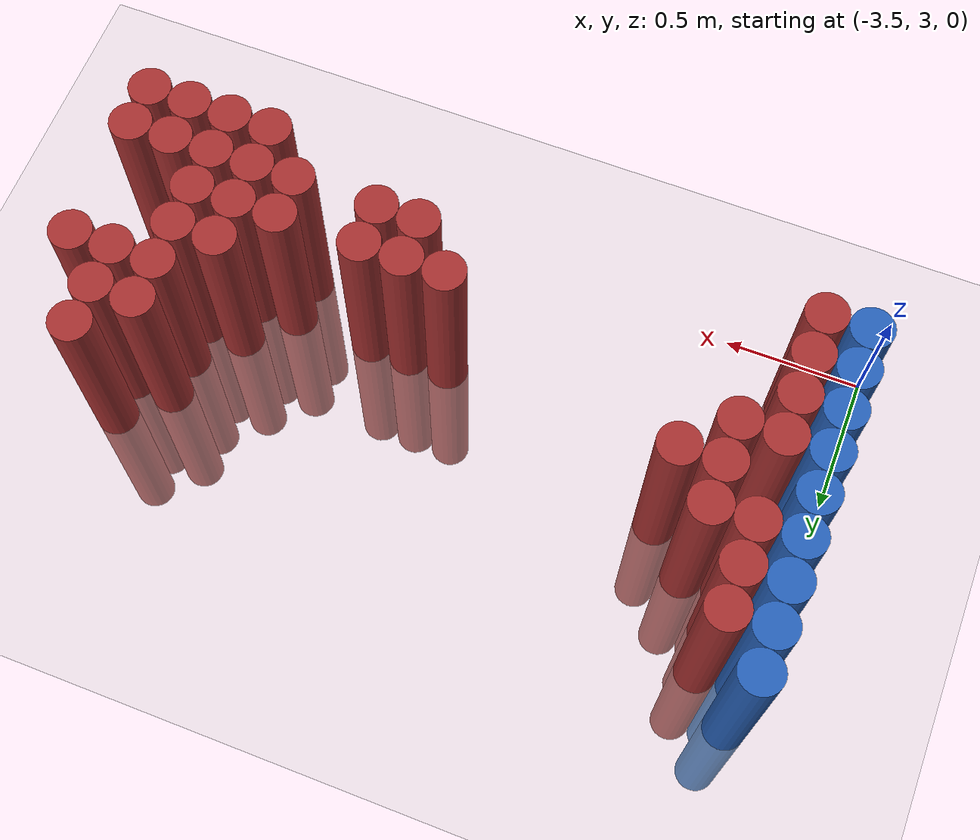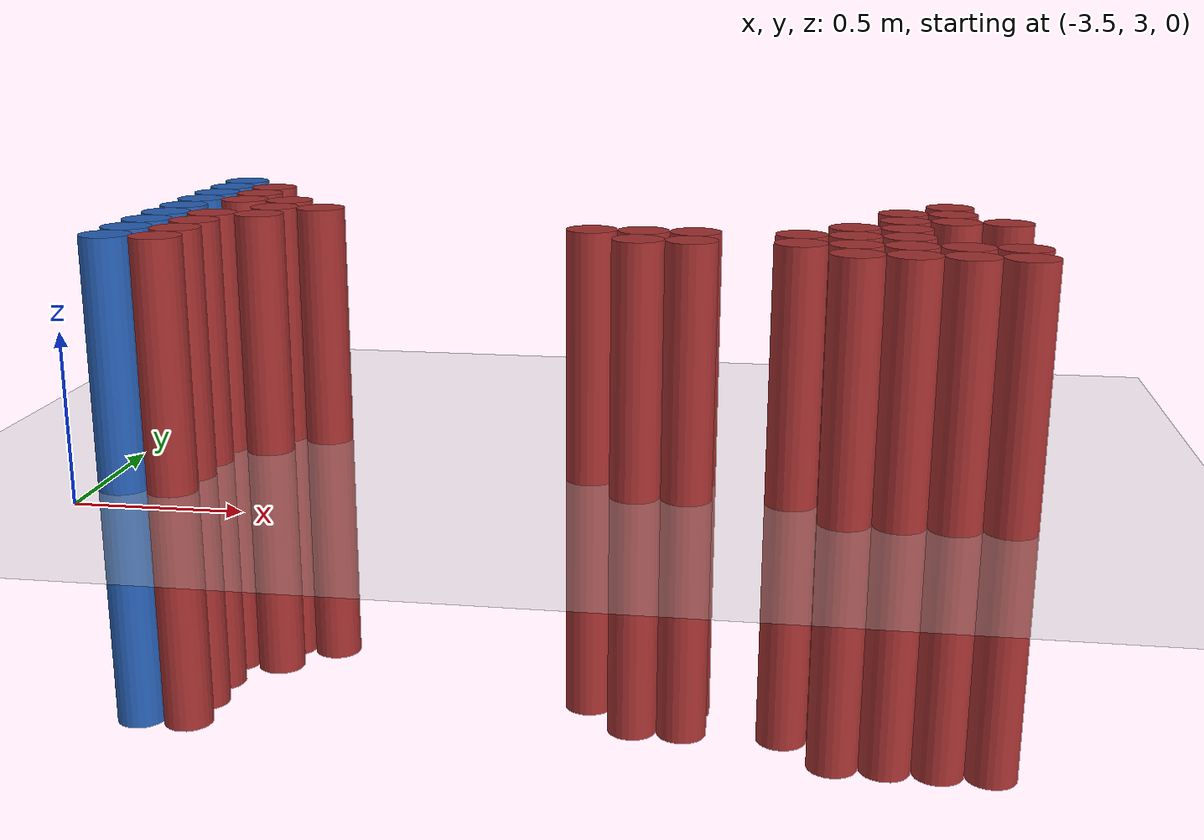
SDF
<sdf version="1.6">
 <world name="default">
  <model name="ground_plane">
   <static>1</static>
   <link name="link">
    <collision name="collision">
     <geometry><plane><normal>0 0 1</normal><size>100 100</size></plane></geometry>
     <surface><friction><ode><mu>100</mu><mu2>50</mu2></ode></friction></surface>
    </collision>
    <visual name="visual">
     <cast_shadows>0</cast_shadows>
     <geometry><plane><normal>0 0 1</normal><size>100 100</size></plane></geometry>
     <material>
      <script><uri>file://media/materials/scripts/gazebo.material</uri><name>Gazebo/Grey</name></script>
     </material>
    </visual>
   </link>
  </model>
  <model name="unit_cylinder_157">
   <static>1</static>
   <pose>-3.425000 3.175000 0.000000 0.000000 0.000000 0.000000</pose>
   <link name="link">
    <inertial>
     <mass>1</mass>
     <inertia><ixx>0.145833</ixx><ixy>0</ixy><ixz>0</ixz><iyy>0.145833</iyy><iyz>0</iyz><izz>0.125</izz></inertia>
    </inertial>
    <collision name="collision">
     <geometry><cylinder><radius>0.075000</radius><length>1.5</length></cylinder></geometry>
    </collision>
    <visual name="visual">
     <geometry><cylinder><radius>0.075000</radius><length>1.5</length></cylinder></geometry>
     <material>
      <ambient>0.152000 0.379000 0.720000 1</ambient>
      <diffuse>0.152000 0.379000 0.720000 1</diffuse>
     </material>
     <material>
      <script><name>Gazebo/Grey</name><uri>file://media/materials/scripts/gazebo.material</uri></script>
     </material>
    </visual>
   </link>
  </model>
  <model name="unit_cylinder_159">
   <static>1</static>
   <pose>-3.425000 3.325000 0.000000 0.000000 0.000000 0.000000</pose>
   <link name="link">
    <inertial>
     <mass>1</mass>
     <inertia><ixx>0.145833</ixx><ixy>0</ixy><ixz>0</ixz><iyy>0.145833</iyy><iyz>0</iyz><izz>0.125</izz></inertia>
    </inertial>
    <collision name="collision">
     <geometry><cylinder><radius>0.075000</radius><length>1.5</length></cylinder></geometry>
    </collision>
    <visual name="visual">
     <geometry><cylinder><radius>0.075000</radius><length>1.5</length></cylinder></geometry>
     <material>
      <ambient>0.152000 0.379000 0.720000 1</ambient>
      <diffuse>0.152000 0.379000 0.720000 1</diffuse>
     </material>
     <material>
      <script><name>Gazebo/Grey</name><uri>file://media/materials/scripts/gazebo.material</uri></script>
     </material>
    </visual>
   </link>
  </model>
  <model name="unit_cylinder_161">
   <static>1</static>
   <pose>-3.425000 3.475000 0.000000 0.000000 0.000000 0.000000</pose>
   <link name="link">
    <inertial>
     <mass>1</mass>
     <inertia><ixx>0.145833</ixx><ixy>0</ixy><ixz>0</ixz><iyy>0.145833</iyy><iyz>0</iyz><izz>0.125</izz></inertia>
    </inertial>
    <collision name="collision">
     <geometry><cylinder><radius>0.075000</radius><length>1.5</length></cylinder></geometry>
    </collision>
    <visual name="visual">
     <geometry><cylinder><radius>0.075000</radius><length>1.5</length></cylinder></geometry>
     <material>
      <ambient>0.152000 0.379000 0.720000 1</ambient>
      <diffuse>0.152000 0.379000 0.720000 1</diffuse>
     </material>
     <material>
      <script><name>Gazebo/Grey</name><uri>file://media/materials/scripts/gazebo.material</uri></script>
     </material>
    </visual>
   </link>
  </model>
  <model name="unit_cylinder_163">
   <static>1</static>
   <pose>-3.425000 3.625000 0.000000 0.000000 0.000000 0.000000</pose>
   <link name="link">
    <inertial>
     <mass>1</mass>
     <inertia><ixx>0.145833</ixx><ixy>0</ixy><ixz>0</ixz><iyy>0.145833</iyy><iyz>0</iyz><izz>0.125</izz></inertia>
    </inertial>
    <collision name="collision">
     <geometry><cylinder><radius>0.075000</radius><length>1.5</length></cylinder></geometry>
    </collision>
    <visual name="visual">
     <geometry><cylinder><radius>0.075000</radius><length>1.5</length></cylinder></geometry>
     <material>
      <ambient>0.152000 0.379000 0.720000 1</ambient>
      <diffuse>0.152000 0.379000 0.720000 1</diffuse>
     </material>
     <material>
      <script><name>Gazebo/Grey</name><uri>file://media/materials/scripts/gazebo.material</uri></script>
     </material>
    </visual>
   </link>
  </model>
  <model name="unit_cylinder_165">
   <static>1</static>
   <pose>-3.425000 3.775000 0.000000 0.000000 0.000000 0.000000</pose>
   <link name="link">
    <inertial>
     <mass>1</mass>
     <inertia><ixx>0.145833</ixx><ixy>0</ixy><ixz>0</ixz><iyy>0.145833</iyy><iyz>0</iyz><izz>0.125</izz></inertia>
    </inertial>
    <collision name="collision">
     <geometry><cylinder><radius>0.075000</radius><length>1.5</length></cylinder></geometry>
    </collision>
    <visual name="visual">
     <geometry><cylinder><radius>0.075000</radius><length>1.5</length></cylinder></geometry>
     <material>
      <ambient>0.152000 0.379000 0.720000 1</ambient>
      <diffuse>0.152000 0.379000 0.720000 1</diffuse>
     </material>
     <material>
      <script><name>Gazebo/Grey</name><uri>file://media/materials/scripts/gazebo.material</uri></script>
     </material>
    </visual>
   </link>
  </model>
  <model name="unit_cylinder_167">
   <static>1</static>
   <pose>-3.425000 3.925000 0.000000 0.000000 0.000000 0.000000</pose>
   <link name="link">
    <inertial>
     <mass>1</mass>
     <inertia><ixx>0.145833</ixx><ixy>0</ixy><ixz>0</ixz><iyy>0.145833</iyy><iyz>0</iyz><izz>0.125</izz></inertia>
    </inertial>
    <collision name="collision">
     <geometry><cylinder><radius>0.075000</radius><length>1.5</length></cylinder></geometry>
    </collision>
    <visual name="visual">
     <geometry><cylinder><radius>0.075000</radius><length>1.5</length></cylinder></geometry>
     <material>
      <ambient>0.152000 0.379000 0.720000 1</ambient>
      <diffuse>0.152000 0.379000 0.720000 1</diffuse>
     </material>
     <material>
      <script><name>Gazebo/Grey</name><uri>file://media/materials/scripts/gazebo.material</uri></script>
     </material>
    </visual>
   </link>
  </model>
  <model name="unit_cylinder_169">
   <static>1</static>
   <pose>-3.425000 4.075000 0.000000 0.000000 0.000000 0.000000</pose>
   <link name="link">
    <inertial>
     <mass>1</mass>
     <inertia><ixx>0.145833</ixx><ixy>0</ixy><ixz>0</ixz><iyy>0.145833</iyy><iyz>0</iyz><izz>0.125</izz></inertia>
    </inertial>
    <collision name="collision">
     <geometry><cylinder><radius>0.075000</radius><length>1.5</length></cylinder></geometry>
    </collision>
    <visual name="visual">
     <geometry><cylinder><radius>0.075000</radius><length>1.5</length></cylinder></geometry>
     <material>
      <ambient>0.152000 0.379000 0.720000 1</ambient>
      <diffuse>0.152000 0.379000 0.720000 1</diffuse>
     </material>
     <material>
      <script><name>Gazebo/Grey</name><uri>file://media/materials/scripts/gazebo.material</uri></script>
     </material>
    </visual>
   </link>
  </model>
  <model name="unit_cylinder_171">
   <static>1</static>
   <pose>-3.425000 4.225000 0.000000 0.000000 0.000000 0.000000</pose>
   <link name="link">
    <inertial>
     <mass>1</mass>
     <inertia><ixx>0.145833</ixx><ixy>0</ixy><ixz>0</ixz><iyy>0.145833</iyy><iyz>0</iyz><izz>0.125</izz></inertia>
    </inertial>
    <collision name="collision">
     <geometry><cylinder><radius>0.075000</radius><length>1.5</length></cylinder></geometry>
    </collision>
    <visual name="visual">
     <geometry><cylinder><radius>0.075000</radius><length>1.5</length></cylinder></geometry>
     <material>
      <ambient>0.152000 0.379000 0.720000 1</ambient>
      <diffuse>0.152000 0.379000 0.720000 1</diffuse>
     </material>
     <material>
      <script><name>Gazebo/Grey</name><uri>file://media/materials/scripts/gazebo.material</uri></script>
     </material>
    </visual>
   </link>
  </model>
  <model name="unit_cylinder_173">
   <static>1</static>
   <pose>-3.425000 4.375000 0.000000 0.000000 0.000000 0.000000</pose>
   <link name="link">
    <inertial>
     <mass>1</mass>
     <inertia><ixx>0.145833</ixx><ixy>0</ixy><ixz>0</ixz><iyy>0.145833</iyy><iyz>0</iyz><izz>0.125</izz></inertia>
    </inertial>
    <collision name="collision">
     <geometry><cylinder><radius>0.075000</radius><length>1.5</length></cylinder></geometry>
    </collision>
    <visual name="visual">
     <geometry><cylinder><radius>0.075000</radius><length>1.5</length></cylinder></geometry>
     <material>
      <ambient>0.152000 0.379000 0.720000 1</ambient>
      <diffuse>0.152000 0.379000 0.720000 1</diffuse>
     </material>
     <material>
      <script><name>Gazebo/Grey</name><uri>file://media/materials/scripts/gazebo.material</uri></script>
     </material>
    </visual>
   </link>
  </model>
  <model name="unit_cylinder_242">
   <static>1</static>
   <pose>-3.425000 3.175000 0.000000 0.000000 0.000000 0.000000</pose>
   <link name="link">
    <inertial>
     <mass>1</mass>
     <inertia><ixx>0.145833</ixx><ixy>0</ixy><ixz>0</ixz><iyy>0.145833</iyy><iyz>0</iyz><izz>0.125</izz></inertia>
    </inertial>
    <collision name="collision">
     <geometry><cylinder><radius>0.075000</radius><length>1.5</length></cylinder></geometry>
    </collision>
    <visual name="visual">
     <geometry><cylinder><radius>0.075000</radius><length>1.5</length></cylinder></geometry>
     <material>
      <ambient>0.152000 0.379000 0.720000 1</ambient>
      <diffuse>0.152000 0.379000 0.720000 1</diffuse>
     </material>
     <material>
      <script><name>Gazebo/Grey</name><uri>file://media/materials/scripts/gazebo.material</uri></script>
     </material>
    </visual>
   </link>
  </model>
  <model name="unit_cylinder_243">
   <static>1</static>
   <pose>-3.425000 3.325000 0.000000 0.000000 0.000000 0.000000</pose>
   <link name="link">
    <inertial>
     <mass>1</mass>
     <inertia><ixx>0.145833</ixx><ixy>0</ixy><ixz>0</ixz><iyy>0.145833</iyy><iyz>0</iyz><izz>0.125</izz></inertia>
    </inertial>
    <collision name="collision">
     <geometry><cylinder><radius>0.075000</radius><length>1.5</length></cylinder></geometry>
    </collision>
    <visual name="visual">
     <geometry><cylinder><radius>0.075000</radius><length>1.5</length></cylinder></geometry>
     <material>
      <ambient>0.152000 0.379000 0.720000 1</ambient>
      <diffuse>0.152000 0.379000 0.720000 1</diffuse>
     </material>
     <material>
      <script><name>Gazebo/Grey</name><uri>file://media/materials/scripts/gazebo.material</uri></script>
     </material>
    </visual>
   </link>
  </model>
  <model name="unit_cylinder_244">
   <static>1</static>
   <pose>-3.425000 3.475000 0.000000 0.000000 0.000000 0.000000</pose>
   <link name="link">
    <inertial>
     <mass>1</mass>
     <inertia><ixx>0.145833</ixx><ixy>0</ixy><ixz>0</ixz><iyy>0.145833</iyy><iyz>0</iyz><izz>0.125</izz></inertia>
    </inertial>
    <collision name="collision">
     <geometry><cylinder><radius>0.075000</radius><length>1.5</length></cylinder></geometry>
    </collision>
    <visual name="visual">
     <geometry><cylinder><radius>0.075000</radius><length>1.5</length></cylinder></geometry>
     <material>
      <ambient>0.152000 0.379000 0.720000 1</ambient>
      <diffuse>0.152000 0.379000 0.720000 1</diffuse>
     </material>
     <material>
      <script><name>Gazebo/Grey</name><uri>file://media/materials/scripts/gazebo.material</uri></script>
     </material>
    </visual>
   </link>
  </model>
  <model name="unit_cylinder_245">
   <static>1</static>
   <pose>-3.425000 3.625000 0.000000 0.000000 0.000000 0.000000</pose>
   <link name="link">
    <inertial>
     <mass>1</mass>
     <inertia><ixx>0.145833</ixx><ixy>0</ixy><ixz>0</ixz><iyy>0.145833</iyy><iyz>0</iyz><izz>0.125</izz></inertia>
    </inertial>
    <collision name="collision">
     <geometry><cylinder><radius>0.075000</radius><length>1.5</length></cylinder></geometry>
    </collision>
    <visual name="visual">
     <geometry><cylinder><radius>0.075000</radius><length>1.5</length></cylinder></geometry>
     <material>
      <ambient>0.152000 0.379000 0.720000 1</ambient>
      <diffuse>0.152000 0.379000 0.720000 1</diffuse>
     </material>
     <material>
      <script><name>Gazebo/Grey</name><uri>file://media/materials/scripts/gazebo.material</uri></script>
     </material>
    </visual>
   </link>
  </model>
  <model name="unit_cylinder_246">
   <static>1</static>
   <pose>-3.425000 3.775000 0.000000 0.000000 0.000000 0.000000</pose>
   <link name="link">
    <inertial>
     <mass>1</mass>
     <inertia><ixx>0.145833</ixx><ixy>0</ixy><ixz>0</ixz><iyy>0.145833</iyy><iyz>0</iyz><izz>0.125</izz></inertia>
    </inertial>
    <collision name="collision">
     <geometry><cylinder><radius>0.075000</radius><length>1.5</length></cylinder></geometry>
    </collision>
    <visual name="visual">
     <geometry><cylinder><radius>0.075000</radius><length>1.5</length></cylinder></geometry>
     <material>
      <ambient>0.152000 0.379000 0.720000 1</ambient>
      <diffuse>0.152000 0.379000 0.720000 1</diffuse>
     </material>
     <material>
      <script><name>Gazebo/Grey</name><uri>file://media/materials/scripts/gazebo.material</uri></script>
     </material>
    </visual>
   </link>
  </model>
  <model name="unit_cylinder_247">
   <static>1</static>
   <pose>-3.425000 3.925000 0.000000 0.000000 0.000000 0.000000</pose>
   <link name="link">
    <inertial>
     <mass>1</mass>
     <inertia><ixx>0.145833</ixx><ixy>0</ixy><ixz>0</ixz><iyy>0.145833</iyy><iyz>0</iyz><izz>0.125</izz></inertia>
    </inertial>
    <collision name="collision">
     <geometry><cylinder><radius>0.075000</radius><length>1.5</length></cylinder></geometry>
    </collision>
    <visual name="visual">
     <geometry><cylinder><radius>0.075000</radius><length>1.5</length></cylinder></geometry>
     <material>
      <ambient>0.152000 0.379000 0.720000 1</ambient>
      <diffuse>0.152000 0.379000 0.720000 1</diffuse>
     </material>
     <material>
      <script><name>Gazebo/Grey</name><uri>file://media/materials/scripts/gazebo.material</uri></script>
     </material>
    </visual>
   </link>
  </model>
  <model name="unit_cylinder_248">
   <static>1</static>
   <pose>-3.425000 4.075000 0.000000 0.000000 0.000000 0.000000</pose>
   <link name="link">
    <inertial>
     <mass>1</mass>
     <inertia><ixx>0.145833</ixx><ixy>0</ixy><ixz>0</ixz><iyy>0.145833</iyy><iyz>0</iyz><izz>0.125</izz></inertia>
    </inertial>
    <collision name="collision">
     <geometry><cylinder><radius>0.075000</radius><length>1.5</length></cylinder></geometry>
    </collision>
    <visual name="visual">
     <geometry><cylinder><radius>0.075000</radius><length>1.5</length></cylinder></geometry>
     <material>
      <ambient>0.152000 0.379000 0.720000 1</ambient>
      <diffuse>0.152000 0.379000 0.720000 1</diffuse>
     </material>
     <material>
      <script><name>Gazebo/Grey</name><uri>file://media/materials/scripts/gazebo.material</uri></script>
     </material>
    </visual>
   </link>
  </model>
  <model name="unit_cylinder_249">
   <static>1</static>
   <pose>-3.425000 4.225000 0.000000 0.000000 0.000000 0.000000</pose>
   <link name="link">
    <inertial>
     <mass>1</mass>
     <inertia><ixx>0.145833</ixx><ixy>0</ixy><ixz>0</ixz><iyy>0.145833</iyy><iyz>0</iyz><izz>0.125</izz></inertia>
    </inertial>
    <collision name="collision">
     <geometry><cylinder><radius>0.075000</radius><length>1.5</length></cylinder></geometry>
    </collision>
    <visual name="visual">
     <geometry><cylinder><radius>0.075000</radius><length>1.5</length></cylinder></geometry>
     <material>
      <ambient>0.152000 0.379000 0.720000 1</ambient>
      <diffuse>0.152000 0.379000 0.720000 1</diffuse>
     </material>
     <material>
      <script><name>Gazebo/Grey</name><uri>file://media/materials/scripts/gazebo.material</uri></script>
     </material>
    </visual>
   </link>
  </model>
  <model name="unit_cylinder_272">
   <static>1</static>
   <pose>-3.275000 3.175000 0.000000 0.000000 0.000000 0.000000</pose>
   <link name="link">
    <inertial>
     <mass>1</mass>
     <inertia><ixx>0.145833</ixx><ixy>0</ixy><ixz>0</ixz><iyy>0.145833</iyy><iyz>0</iyz><izz>0.125</izz></inertia>
    </inertial>
    <collision name="collision">
     <geometry><cylinder><radius>0.075000</radius><length>1.5</length></cylinder></geometry>
    </collision>
    <visual name="visual">
     <geometry><cylinder><radius>0.075000</radius><length>1.5</length></cylinder></geometry>
     <material>
      <ambient>0.648000 0.192000 0.192000 1</ambient>
      <diffuse>0.648000 0.192000 0.192000 1</diffuse>
     </material>
     <material>
      <script><name>Gazebo/Grey</name><uri>file://media/materials/scripts/gazebo.material</uri></script>
     </material>
    </visual>
   </link>
  </model>
  <model name="unit_cylinder_273">
   <static>1</static>
   <pose>-3.275000 3.325000 0.000000 0.000000 0.000000 0.000000</pose>
   <link name="link">
    <inertial>
     <mass>1</mass>
     <inertia><ixx>0.145833</ixx><ixy>0</ixy><ixz>0</ixz><iyy>0.145833</iyy><iyz>0</iyz><izz>0.125</izz></inertia>
    </inertial>
    <collision name="collision">
     <geometry><cylinder><radius>0.075000</radius><length>1.5</length></cylinder></geometry>
    </collision>
    <visual name="visual">
     <geometry><cylinder><radius>0.075000</radius><length>1.5</length></cylinder></geometry>
     <material>
      <ambient>0.648000 0.192000 0.192000 1</ambient>
      <diffuse>0.648000 0.192000 0.192000 1</diffuse>
     </material>
     <material>
      <script><name>Gazebo/Grey</name><uri>file://media/materials/scripts/gazebo.material</uri></script>
     </material>
    </visual>
   </link>
  </model>
  <model name="unit_cylinder_274">
   <static>1</static>
   <pose>-3.275000 3.475000 0.000000 0.000000 0.000000 0.000000</pose>
   <link name="link">
    <inertial>
     <mass>1</mass>
     <inertia><ixx>0.145833</ixx><ixy>0</ixy><ixz>0</ixz><iyy>0.145833</iyy><iyz>0</iyz><izz>0.125</izz></inertia>
    </inertial>
    <collision name="collision">
     <geometry><cylinder><radius>0.075000</radius><length>1.5</length></cylinder></geometry>
    </collision>
    <visual name="visual">
     <geometry><cylinder><radius>0.075000</radius><length>1.5</length></cylinder></geometry>
     <material>
      <ambient>0.648000 0.192000 0.192000 1</ambient>
      <diffuse>0.648000 0.192000 0.192000 1</diffuse>
     </material>
     <material>
      <script><name>Gazebo/Grey</name><uri>file://media/materials/scripts/gazebo.material</uri></script>
     </material>
    </visual>
   </link>
  </model>
  <model name="unit_cylinder_275">
   <static>1</static>
   <pose>-3.275000 3.625000 0.000000 0.000000 0.000000 0.000000</pose>
   <link name="link">
    <inertial>
     <mass>1</mass>
     <inertia><ixx>0.145833</ixx><ixy>0</ixy><ixz>0</ixz><iyy>0.145833</iyy><iyz>0</iyz><izz>0.125</izz></inertia>
    </inertial>
    <collision name="collision">
     <geometry><cylinder><radius>0.075000</radius><length>1.5</length></cylinder></geometry>
    </collision>
    <visual name="visual">
     <geometry><cylinder><radius>0.075000</radius><length>1.5</length></cylinder></geometry>
     <material>
      <ambient>0.648000 0.192000 0.192000 1</ambient>
      <diffuse>0.648000 0.192000 0.192000 1</diffuse>
     </material>
     <material>
      <script><name>Gazebo/Grey</name><uri>file://media/materials/scripts/gazebo.material</uri></script>
     </material>
    </visual>
   </link>
  </model>
  <model name="unit_cylinder_276">
   <static>1</static>
   <pose>-3.275000 3.925000 0.000000 0.000000 0.000000 0.000000</pose>
   <link name="link">
    <inertial>
     <mass>1</mass>
     <inertia><ixx>0.145833</ixx><ixy>0</ixy><ixz>0</ixz><iyy>0.145833</iyy><iyz>0</iyz><izz>0.125</izz></inertia>
    </inertial>
    <collision name="collision">
     <geometry><cylinder><radius>0.075000</radius><length>1.5</length></cylinder></geometry>
    </collision>
    <visual name="visual">
     <geometry><cylinder><radius>0.075000</radius><length>1.5</length></cylinder></geometry>
     <material>
      <ambient>0.648000 0.192000 0.192000 1</ambient>
      <diffuse>0.648000 0.192000 0.192000 1</diffuse>
     </material>
     <material>
      <script><name>Gazebo/Grey</name><uri>file://media/materials/scripts/gazebo.material</uri></script>
     </material>
    </visual>
   </link>
  </model>
  <model name="unit_cylinder_277">
   <static>1</static>
   <pose>-3.275000 4.075000 0.000000 0.000000 0.000000 0.000000</pose>
   <link name="link">
    <inertial>
     <mass>1</mass>
     <inertia><ixx>0.145833</ixx><ixy>0</ixy><ixz>0</ixz><iyy>0.145833</iyy><iyz>0</iyz><izz>0.125</izz></inertia>
    </inertial>
    <collision name="collision">
     <geometry><cylinder><radius>0.075000</radius><length>1.5</length></cylinder></geometry>
    </collision>
    <visual name="visual">
     <geometry><cylinder><radius>0.075000</radius><length>1.5</length></cylinder></geometry>
     <material>
      <ambient>0.648000 0.192000 0.192000 1</ambient>
      <diffuse>0.648000 0.192000 0.192000 1</diffuse>
     </material>
     <material>
      <script><name>Gazebo/Grey</name><uri>file://media/materials/scripts/gazebo.material</uri></script>
     </material>
    </visual>
   </link>
  </model>
  <model name="unit_cylinder_278">
   <static>1</static>
   <pose>-3.275000 4.225000 0.000000 0.000000 0.000000 0.000000</pose>
   <link name="link">
    <inertial>
     <mass>1</mass>
     <inertia><ixx>0.145833</ixx><ixy>0</ixy><ixz>0</ixz><iyy>0.145833</iyy><iyz>0</iyz><izz>0.125</izz></inertia>
    </inertial>
    <collision name="collision">
     <geometry><cylinder><radius>0.075000</radius><length>1.5</length></cylinder></geometry>
    </collision>
    <visual name="visual">
     <geometry><cylinder><radius>0.075000</radius><length>1.5</length></cylinder></geometry>
     <material>
      <ambient>0.648000 0.192000 0.192000 1</ambient>
      <diffuse>0.648000 0.192000 0.192000 1</diffuse>
     </material>
     <material>
      <script><name>Gazebo/Grey</name><uri>file://media/materials/scripts/gazebo.material</uri></script>
     </material>
    </visual>
   </link>
  </model>
  <model name="unit_cylinder_289">
   <static>1</static>
   <pose>-3.125000 3.625000 0.000000 0.000000 0.000000 0.000000</pose>
   <link name="link">
    <inertial>
     <mass>1</mass>
     <inertia><ixx>0.145833</ixx><ixy>0</ixy><ixz>0</ixz><iyy>0.145833</iyy><iyz>0</iyz><izz>0.125</izz></inertia>
    </inertial>
    <collision name="collision">
     <geometry><cylinder><radius>0.075000</radius><length>1.5</length></cylinder></geometry>
    </collision>
    <visual name="visual">
     <geometry><cylinder><radius>0.075000</radius><length>1.5</length></cylinder></geometry>
     <material>
      <ambient>0.648000 0.192000 0.192000 1</ambient>
      <diffuse>0.648000 0.192000 0.192000 1</diffuse>
     </material>
     <material>
      <script><name>Gazebo/Grey</name><uri>file://media/materials/scripts/gazebo.material</uri></script>
     </material>
    </visual>
   </link>
  </model>
  <model name="unit_cylinder_290">
   <static>1</static>
   <pose>-3.125000 3.775000 0.000000 0.000000 0.000000 0.000000</pose>
   <link name="link">
    <inertial>
     <mass>1</mass>
     <inertia><ixx>0.145833</ixx><ixy>0</ixy><ixz>0</ixz><iyy>0.145833</iyy><iyz>0</iyz><izz>0.125</izz></inertia>
    </inertial>
    <collision name="collision">
     <geometry><cylinder><radius>0.075000</radius><length>1.5</length></cylinder></geometry>
    </collision>
    <visual name="visual">
     <geometry><cylinder><radius>0.075000</radius><length>1.5</length></cylinder></geometry>
     <material>
      <ambient>0.648000 0.192000 0.192000 1</ambient>
      <diffuse>0.648000 0.192000 0.192000 1</diffuse>
     </material>
     <material>
      <script><name>Gazebo/Grey</name><uri>file://media/materials/scripts/gazebo.material</uri></script>
     </material>
    </visual>
   </link>
  </model>
  <model name="unit_cylinder_291">
   <static>1</static>
   <pose>-3.125000 3.925000 0.000000 0.000000 0.000000 0.000000</pose>
   <link name="link">
    <inertial>
     <mass>1</mass>
     <inertia><ixx>0.145833</ixx><ixy>0</ixy><ixz>0</ixz><iyy>0.145833</iyy><iyz>0</iyz><izz>0.125</izz></inertia>
    </inertial>
    <collision name="collision">
     <geometry><cylinder><radius>0.075000</radius><length>1.5</length></cylinder></geometry>
    </collision>
    <visual name="visual">
     <geometry><cylinder><radius>0.075000</radius><length>1.5</length></cylinder></geometry>
     <material>
      <ambient>0.648000 0.192000 0.192000 1</ambient>
      <diffuse>0.648000 0.192000 0.192000 1</diffuse>
     </material>
     <material>
      <script><name>Gazebo/Grey</name><uri>file://media/materials/scripts/gazebo.material</uri></script>
     </material>
    </visual>
   </link>
  </model>
  <model name="unit_cylinder_299">
   <static>1</static>
   <pose>-2.975000 3.775000 0.000000 0.000000 0.000000 0.000000</pose>
   <link name="link">
    <inertial>
     <mass>1</mass>
     <inertia><ixx>0.145833</ixx><ixy>0</ixy><ixz>0</ixz><iyy>0.145833</iyy><iyz>0</iyz><izz>0.125</izz></inertia>
    </inertial>
    <collision name="collision">
     <geometry><cylinder><radius>0.075000</radius><length>1.5</length></cylinder></geometry>
    </collision>
    <visual name="visual">
     <geometry><cylinder><radius>0.075000</radius><length>1.5</length></cylinder></geometry>
     <material>
      <ambient>0.648000 0.192000 0.192000 1</ambient>
      <diffuse>0.648000 0.192000 0.192000 1</diffuse>
     </material>
     <material>
      <script><name>Gazebo/Grey</name><uri>file://media/materials/scripts/gazebo.material</uri></script>
     </material>
    </visual>
   </link>
  </model>
  <model name="unit_cylinder_326">
   <static>1</static>
   <pose>-2.075000 3.475000 0.000000 0.000000 0.000000 0.000000</pose>
   <link name="link">
    <inertial>
     <mass>1</mass>
     <inertia><ixx>0.145833</ixx><ixy>0</ixy><ixz>0</ixz><iyy>0.145833</iyy><iyz>0</iyz><izz>0.125</izz></inertia>
    </inertial>
    <collision name="collision">
     <geometry><cylinder><radius>0.075000</radius><length>1.5</length></cylinder></geometry>
    </collision>
    <visual name="visual">
     <geometry><cylinder><radius>0.075000</radius><length>1.5</length></cylinder></geometry>
     <material>
      <ambient>0.648000 0.192000 0.192000 1</ambient>
      <diffuse>0.648000 0.192000 0.192000 1</diffuse>
     </material>
     <material>
      <script><name>Gazebo/Grey</name><uri>file://media/materials/scripts/gazebo.material</uri></script>
     </material>
    </visual>
   </link>
  </model>
  <model name="unit_cylinder_330">
   <static>1</static>
   <pose>-1.925000 3.325000 0.000000 0.000000 0.000000 0.000000</pose>
   <link name="link">
    <inertial>
     <mass>1</mass>
     <inertia><ixx>0.145833</ixx><ixy>0</ixy><ixz>0</ixz><iyy>0.145833</iyy><iyz>0</iyz><izz>0.125</izz></inertia>
    </inertial>
    <collision name="collision">
     <geometry><cylinder><radius>0.075000</radius><length>1.5</length></cylinder></geometry>
    </collision>
    <visual name="visual">
     <geometry><cylinder><radius>0.075000</radius><length>1.5</length></cylinder></geometry>
     <material>
      <ambient>0.648000 0.192000 0.192000 1</ambient>
      <diffuse>0.648000 0.192000 0.192000 1</diffuse>
     </material>
     <material>
      <script><name>Gazebo/Grey</name><uri>file://media/materials/scripts/gazebo.material</uri></script>
     </material>
    </visual>
   </link>
  </model>
  <model name="unit_cylinder_331">
   <static>1</static>
   <pose>-1.925000 3.475000 0.000000 0.000000 0.000000 0.000000</pose>
   <link name="link">
    <inertial>
     <mass>1</mass>
     <inertia><ixx>0.145833</ixx><ixy>0</ixy><ixz>0</ixz><iyy>0.145833</iyy><iyz>0</iyz><izz>0.125</izz></inertia>
    </inertial>
    <collision name="collision">
     <geometry><cylinder><radius>0.075000</radius><length>1.5</length></cylinder></geometry>
    </collision>
    <visual name="visual">
     <geometry><cylinder><radius>0.075000</radius><length>1.5</length></cylinder></geometry>
     <material>
      <ambient>0.648000 0.192000 0.192000 1</ambient>
      <diffuse>0.648000 0.192000 0.192000 1</diffuse>
     </material>
     <material>
      <script><name>Gazebo/Grey</name><uri>file://media/materials/scripts/gazebo.material</uri></script>
     </material>
    </visual>
   </link>
  </model>
  <model name="unit_cylinder_336">
   <static>1</static>
   <pose>-1.775000 3.325000 0.000000 0.000000 0.000000 0.000000</pose>
   <link name="link">
    <inertial>
     <mass>1</mass>
     <inertia><ixx>0.145833</ixx><ixy>0</ixy><ixz>0</ixz><iyy>0.145833</iyy><iyz>0</iyz><izz>0.125</izz></inertia>
    </inertial>
    <collision name="collision">
     <geometry><cylinder><radius>0.075000</radius><length>1.5</length></cylinder></geometry>
    </collision>
    <visual name="visual">
     <geometry><cylinder><radius>0.075000</radius><length>1.5</length></cylinder></geometry>
     <material>
      <ambient>0.648000 0.192000 0.192000 1</ambient>
      <diffuse>0.648000 0.192000 0.192000 1</diffuse>
     </material>
     <material>
      <script><name>Gazebo/Grey</name><uri>file://media/materials/scripts/gazebo.material</uri></script>
     </material>
    </visual>
   </link>
  </model>
  <model name="unit_cylinder_337">
   <static>1</static>
   <pose>-1.775000 3.475000 0.000000 0.000000 0.000000 0.000000</pose>
   <link name="link">
    <inertial>
     <mass>1</mass>
     <inertia><ixx>0.145833</ixx><ixy>0</ixy><ixz>0</ixz><iyy>0.145833</iyy><iyz>0</iyz><izz>0.125</izz></inertia>
    </inertial>
    <collision name="collision">
     <geometry><cylinder><radius>0.075000</radius><length>1.5</length></cylinder></geometry>
    </collision>
    <visual name="visual">
     <geometry><cylinder><radius>0.075000</radius><length>1.5</length></cylinder></geometry>
     <material>
      <ambient>0.648000 0.192000 0.192000 1</ambient>
      <diffuse>0.648000 0.192000 0.192000 1</diffuse>
     </material>
     <material>
      <script><name>Gazebo/Grey</name><uri>file://media/materials/scripts/gazebo.material</uri></script>
     </material>
    </visual>
   </link>
  </model>
  <model name="unit_cylinder_345">
   <static>1</static>
   <pose>-1.475000 3.325000 0.000000 0.000000 0.000000 0.000000</pose>
   <link name="link">
    <inertial>
     <mass>1</mass>
     <inertia><ixx>0.145833</ixx><ixy>0</ixy><ixz>0</ixz><iyy>0.145833</iyy><iyz>0</iyz><izz>0.125</izz></inertia>
    </inertial>
    <collision name="collision">
     <geometry><cylinder><radius>0.075000</radius><length>1.5</length></cylinder></geometry>
    </collision>
    <visual name="visual">
     <geometry><cylinder><radius>0.075000</radius><length>1.5</length></cylinder></geometry>
     <material>
      <ambient>0.648000 0.192000 0.192000 1</ambient>
      <diffuse>0.648000 0.192000 0.192000 1</diffuse>
     </material>
     <material>
      <script><name>Gazebo/Grey</name><uri>file://media/materials/scripts/gazebo.material</uri></script>
     </material>
    </visual>
   </link>
  </model>
  <model name="unit_cylinder_346">
   <static>1</static>
   <pose>-1.475000 3.475000 0.000000 0.000000 0.000000 0.000000</pose>
   <link name="link">
    <inertial>
     <mass>1</mass>
     <inertia><ixx>0.145833</ixx><ixy>0</ixy><ixz>0</ixz><iyy>0.145833</iyy><iyz>0</iyz><izz>0.125</izz></inertia>
    </inertial>
    <collision name="collision">
     <geometry><cylinder><radius>0.075000</radius><length>1.5</length></cylinder></geometry>
    </collision>
    <visual name="visual">
     <geometry><cylinder><radius>0.075000</radius><length>1.5</length></cylinder></geometry>
     <material>
      <ambient>0.648000 0.192000 0.192000 1</ambient>
      <diffuse>0.648000 0.192000 0.192000 1</diffuse>
     </material>
     <material>
      <script><name>Gazebo/Grey</name><uri>file://media/materials/scripts/gazebo.material</uri></script>
     </material>
    </visual>
   </link>
  </model>
  <model name="unit_cylinder_351">
   <static>1</static>
   <pose>-1.325000 3.175000 0.000000 0.000000 0.000000 0.000000</pose>
   <link name="link">
    <inertial>
     <mass>1</mass>
     <inertia><ixx>0.145833</ixx><ixy>0</ixy><ixz>0</ixz><iyy>0.145833</iyy><iyz>0</iyz><izz>0.125</izz></inertia>
    </inertial>
    <collision name="collision">
     <geometry><cylinder><radius>0.075000</radius><length>1.5</length></cylinder></geometry>
    </collision>
    <visual name="visual">
     <geometry><cylinder><radius>0.075000</radius><length>1.5</length></cylinder></geometry>
     <material>
      <ambient>0.648000 0.192000 0.192000 1</ambient>
      <diffuse>0.648000 0.192000 0.192000 1</diffuse>
     </material>
     <material>
      <script><name>Gazebo/Grey</name><uri>file://media/materials/scripts/gazebo.material</uri></script>
     </material>
    </visual>
   </link>
  </model>
  <model name="unit_cylinder_352">
   <static>1</static>
   <pose>-1.325000 3.325000 0.000000 0.000000 0.000000 0.000000</pose>
   <link name="link">
    <inertial>
     <mass>1</mass>
     <inertia><ixx>0.145833</ixx><ixy>0</ixy><ixz>0</ixz><iyy>0.145833</iyy><iyz>0</iyz><izz>0.125</izz></inertia>
    </inertial>
    <collision name="collision">
     <geometry><cylinder><radius>0.075000</radius><length>1.5</length></cylinder></geometry>
    </collision>
    <visual name="visual">
     <geometry><cylinder><radius>0.075000</radius><length>1.5</length></cylinder></geometry>
     <material>
      <ambient>0.648000 0.192000 0.192000 1</ambient>
      <diffuse>0.648000 0.192000 0.192000 1</diffuse>
     </material>
     <material>
      <script><name>Gazebo/Grey</name><uri>file://media/materials/scripts/gazebo.material</uri></script>
     </material>
    </visual>
   </link>
  </model>
  <model name="unit_cylinder_353">
   <static>1</static>
   <pose>-1.325000 3.475000 0.000000 0.000000 0.000000 0.000000</pose>
   <link name="link">
    <inertial>
     <mass>1</mass>
     <inertia><ixx>0.145833</ixx><ixy>0</ixy><ixz>0</ixz><iyy>0.145833</iyy><iyz>0</iyz><izz>0.125</izz></inertia>
    </inertial>
    <collision name="collision">
     <geometry><cylinder><radius>0.075000</radius><length>1.5</length></cylinder></geometry>
    </collision>
    <visual name="visual">
     <geometry><cylinder><radius>0.075000</radius><length>1.5</length></cylinder></geometry>
     <material>
      <ambient>0.648000 0.192000 0.192000 1</ambient>
      <diffuse>0.648000 0.192000 0.192000 1</diffuse>
     </material>
     <material>
      <script><name>Gazebo/Grey</name><uri>file://media/materials/scripts/gazebo.material</uri></script>
     </material>
    </visual>
   </link>
  </model>
  <model name="unit_cylinder_354">
   <static>1</static>
   <pose>-1.325000 3.625000 0.000000 0.000000 0.000000 0.000000</pose>
   <link name="link">
    <inertial>
     <mass>1</mass>
     <inertia><ixx>0.145833</ixx><ixy>0</ixy><ixz>0</ixz><iyy>0.145833</iyy><iyz>0</iyz><izz>0.125</izz></inertia>
    </inertial>
    <collision name="collision">
     <geometry><cylinder><radius>0.075000</radius><length>1.5</length></cylinder></geometry>
    </collision>
    <visual name="visual">
     <geometry><cylinder><radius>0.075000</radius><length>1.5</length></cylinder></geometry>
     <material>
      <ambient>0.648000 0.192000 0.192000 1</ambient>
      <diffuse>0.648000 0.192000 0.192000 1</diffuse>
     </material>
     <material>
      <script><name>Gazebo/Grey</name><uri>file://media/materials/scripts/gazebo.material</uri></script>
     </material>
    </visual>
   </link>
  </model>
  <model name="unit_cylinder_363">
   <static>1</static>
   <pose>-1.175000 3.175000 0.000000 0.000000 0.000000 0.000000</pose>
   <link name="link">
    <inertial>
     <mass>1</mass>
     <inertia><ixx>0.145833</ixx><ixy>0</ixy><ixz>0</ixz><iyy>0.145833</iyy><iyz>0</iyz><izz>0.125</izz></inertia>
    </inertial>
    <collision name="collision">
     <geometry><cylinder><radius>0.075000</radius><length>1.5</length></cylinder></geometry>
    </collision>
    <visual name="visual">
     <geometry><cylinder><radius>0.075000</radius><length>1.5</length></cylinder></geometry>
     <material>
      <ambient>0.648000 0.192000 0.192000 1</ambient>
      <diffuse>0.648000 0.192000 0.192000 1</diffuse>
     </material>
     <material>
      <script><name>Gazebo/Grey</name><uri>file://media/materials/scripts/gazebo.material</uri></script>
     </material>
    </visual>
   </link>
  </model>
  <model name="unit_cylinder_364">
   <static>1</static>
   <pose>-1.175000 3.325000 0.000000 0.000000 0.000000 0.000000</pose>
   <link name="link">
    <inertial>
     <mass>1</mass>
     <inertia><ixx>0.145833</ixx><ixy>0</ixy><ixz>0</ixz><iyy>0.145833</iyy><iyz>0</iyz><izz>0.125</izz></inertia>
    </inertial>
    <collision name="collision">
     <geometry><cylinder><radius>0.075000</radius><length>1.5</length></cylinder></geometry>
    </collision>
    <visual name="visual">
     <geometry><cylinder><radius>0.075000</radius><length>1.5</length></cylinder></geometry>
     <material>
      <ambient>0.648000 0.192000 0.192000 1</ambient>
      <diffuse>0.648000 0.192000 0.192000 1</diffuse>
     </material>
     <material>
      <script><name>Gazebo/Grey</name><uri>file://media/materials/scripts/gazebo.material</uri></script>
     </material>
    </visual>
   </link>
  </model>
  <model name="unit_cylinder_365">
   <static>1</static>
   <pose>-1.175000 3.475000 0.000000 0.000000 0.000000 0.000000</pose>
   <link name="link">
    <inertial>
     <mass>1</mass>
     <inertia><ixx>0.145833</ixx><ixy>0</ixy><ixz>0</ixz><iyy>0.145833</iyy><iyz>0</iyz><izz>0.125</izz></inertia>
    </inertial>
    <collision name="collision">
     <geometry><cylinder><radius>0.075000</radius><length>1.5</length></cylinder></geometry>
    </collision>
    <visual name="visual">
     <geometry><cylinder><radius>0.075000</radius><length>1.5</length></cylinder></geometry>
     <material>
      <ambient>0.648000 0.192000 0.192000 1</ambient>
      <diffuse>0.648000 0.192000 0.192000 1</diffuse>
     </material>
     <material>
      <script><name>Gazebo/Grey</name><uri>file://media/materials/scripts/gazebo.material</uri></script>
     </material>
    </visual>
   </link>
  </model>
  <model name="unit_cylinder_366">
   <static>1</static>
   <pose>-1.175000 3.625000 0.000000 0.000000 0.000000 0.000000</pose>
   <link name="link">
    <inertial>
     <mass>1</mass>
     <inertia><ixx>0.145833</ixx><ixy>0</ixy><ixz>0</ixz><iyy>0.145833</iyy><iyz>0</iyz><izz>0.125</izz></inertia>
    </inertial>
    <collision name="collision">
     <geometry><cylinder><radius>0.075000</radius><length>1.5</length></cylinder></geometry>
    </collision>
    <visual name="visual">
     <geometry><cylinder><radius>0.075000</radius><length>1.5</length></cylinder></geometry>
     <material>
      <ambient>0.648000 0.192000 0.192000 1</ambient>
      <diffuse>0.648000 0.192000 0.192000 1</diffuse>
     </material>
     <material>
      <script><name>Gazebo/Grey</name><uri>file://media/materials/scripts/gazebo.material</uri></script>
     </material>
    </visual>
   </link>
  </model>
  <model name="unit_cylinder_367">
   <static>1</static>
   <pose>-1.175000 3.775000 0.000000 0.000000 0.000000 0.000000</pose>
   <link name="link">
    <inertial>
     <mass>1</mass>
     <inertia><ixx>0.145833</ixx><ixy>0</ixy><ixz>0</ixz><iyy>0.145833</iyy><iyz>0</iyz><izz>0.125</izz></inertia>
    </inertial>
    <collision name="collision">
     <geometry><cylinder><radius>0.075000</radius><length>1.5</length></cylinder></geometry>
    </collision>
    <visual name="visual">
     <geometry><cylinder><radius>0.075000</radius><length>1.5</length></cylinder></geometry>
     <material>
      <ambient>0.648000 0.192000 0.192000 1</ambient>
      <diffuse>0.648000 0.192000 0.192000 1</diffuse>
     </material>
     <material>
      <script><name>Gazebo/Grey</name><uri>file://media/materials/scripts/gazebo.material</uri></script>
     </material>
    </visual>
   </link>
  </model>
  <model name="unit_cylinder_368">
   <static>1</static>
   <pose>-1.175000 3.925000 0.000000 0.000000 0.000000 0.000000</pose>
   <link name="link">
    <inertial>
     <mass>1</mass>
     <inertia><ixx>0.145833</ixx><ixy>0</ixy><ixz>0</ixz><iyy>0.145833</iyy><iyz>0</iyz><izz>0.125</izz></inertia>
    </inertial>
    <collision name="collision">
     <geometry><cylinder><radius>0.075000</radius><length>1.5</length></cylinder></geometry>
    </collision>
    <visual name="visual">
     <geometry><cylinder><radius>0.075000</radius><length>1.5</length></cylinder></geometry>
     <material>
      <ambient>0.648000 0.192000 0.192000 1</ambient>
      <diffuse>0.648000 0.192000 0.192000 1</diffuse>
     </material>
     <material>
      <script><name>Gazebo/Grey</name><uri>file://media/materials/scripts/gazebo.material</uri></script>
     </material>
    </visual>
   </link>
  </model>
  <model name="unit_cylinder_376">
   <static>1</static>
   <pose>-1.025000 3.175000 0.000000 0.000000 0.000000 0.000000</pose>
   <link name="link">
    <inertial>
     <mass>1</mass>
     <inertia><ixx>0.145833</ixx><ixy>0</ixy><ixz>0</ixz><iyy>0.145833</iyy><iyz>0</iyz><izz>0.125</izz></inertia>
    </inertial>
    <collision name="collision">
     <geometry><cylinder><radius>0.075000</radius><length>1.5</length></cylinder></geometry>
    </collision>
    <visual name="visual">
     <geometry><cylinder><radius>0.075000</radius><length>1.5</length></cylinder></geometry>
     <material>
      <ambient>0.648000 0.192000 0.192000 1</ambient>
      <diffuse>0.648000 0.192000 0.192000 1</diffuse>
     </material>
     <material>
      <script><name>Gazebo/Grey</name><uri>file://media/materials/scripts/gazebo.material</uri></script>
     </material>
    </visual>
   </link>
  </model>
  <model name="unit_cylinder_377">
   <static>1</static>
   <pose>-1.025000 3.325000 0.000000 0.000000 0.000000 0.000000</pose>
   <link name="link">
    <inertial>
     <mass>1</mass>
     <inertia><ixx>0.145833</ixx><ixy>0</ixy><ixz>0</ixz><iyy>0.145833</iyy><iyz>0</iyz><izz>0.125</izz></inertia>
    </inertial>
    <collision name="collision">
     <geometry><cylinder><radius>0.075000</radius><length>1.5</length></cylinder></geometry>
    </collision>
    <visual name="visual">
     <geometry><cylinder><radius>0.075000</radius><length>1.5</length></cylinder></geometry>
     <material>
      <ambient>0.648000 0.192000 0.192000 1</ambient>
      <diffuse>0.648000 0.192000 0.192000 1</diffuse>
     </material>
     <material>
      <script><name>Gazebo/Grey</name><uri>file://media/materials/scripts/gazebo.material</uri></script>
     </material>
    </visual>
   </link>
  </model>
  <model name="unit_cylinder_378">
   <static>1</static>
   <pose>-1.025000 3.775000 0.000000 0.000000 0.000000 0.000000</pose>
   <link name="link">
    <inertial>
     <mass>1</mass>
     <inertia><ixx>0.145833</ixx><ixy>0</ixy><ixz>0</ixz><iyy>0.145833</iyy><iyz>0</iyz><izz>0.125</izz></inertia>
    </inertial>
    <collision name="collision">
     <geometry><cylinder><radius>0.075000</radius><length>1.5</length></cylinder></geometry>
    </collision>
    <visual name="visual">
     <geometry><cylinder><radius>0.075000</radius><length>1.5</length></cylinder></geometry>
     <material>
      <ambient>0.648000 0.192000 0.192000 1</ambient>
      <diffuse>0.648000 0.192000 0.192000 1</diffuse>
     </material>
     <material>
      <script><name>Gazebo/Grey</name><uri>file://media/materials/scripts/gazebo.material</uri></script>
     </material>
    </visual>
   </link>
  </model>
  <model name="unit_cylinder_379">
   <static>1</static>
   <pose>-1.025000 3.925000 0.000000 0.000000 0.000000 0.000000</pose>
   <link name="link">
    <inertial>
     <mass>1</mass>
     <inertia><ixx>0.145833</ixx><ixy>0</ixy><ixz>0</ixz><iyy>0.145833</iyy><iyz>0</iyz><izz>0.125</izz></inertia>
    </inertial>
    <collision name="collision">
     <geometry><cylinder><radius>0.075000</radius><length>1.5</length></cylinder></geometry>
    </collision>
    <visual name="visual">
     <geometry><cylinder><radius>0.075000</radius><length>1.5</length></cylinder></geometry>
     <material>
      <ambient>0.648000 0.192000 0.192000 1</ambient>
      <diffuse>0.648000 0.192000 0.192000 1</diffuse>
     </material>
     <material>
      <script><name>Gazebo/Grey</name><uri>file://media/materials/scripts/gazebo.material</uri></script>
     </material>
    </visual>
   </link>
  </model>
  <model name="unit_cylinder_380">
   <static>1</static>
   <pose>-1.025000 4.075000 0.000000 0.000000 0.000000 0.000000</pose>
   <link name="link">
    <inertial>
     <mass>1</mass>
     <inertia><ixx>0.145833</ixx><ixy>0</ixy><ixz>0</ixz><iyy>0.145833</iyy><iyz>0</iyz><izz>0.125</izz></inertia>
    </inertial>
    <collision name="collision">
     <geometry><cylinder><radius>0.075000</radius><length>1.5</length></cylinder></geometry>
    </collision>
    <visual name="visual">
     <geometry><cylinder><radius>0.075000</radius><length>1.5</length></cylinder></geometry>
     <material>
      <ambient>0.648000 0.192000 0.192000 1</ambient>
      <diffuse>0.648000 0.192000 0.192000 1</diffuse>
     </material>
     <material>
      <script><name>Gazebo/Grey</name><uri>file://media/materials/scripts/gazebo.material</uri></script>
     </material>
    </visual>
   </link>
  </model>
  <model name="unit_cylinder_384">
   <static>1</static>
   <pose>-0.875000 3.175000 0.000000 0.000000 0.000000 0.000000</pose>
   <link name="link">
    <inertial>
     <mass>1</mass>
     <inertia><ixx>0.145833</ixx><ixy>0</ixy><ixz>0</ixz><iyy>0.145833</iyy><iyz>0</iyz><izz>0.125</izz></inertia>
    </inertial>
    <collision name="collision">
     <geometry><cylinder><radius>0.075000</radius><length>1.5</length></cylinder></geometry>
    </collision>
    <visual name="visual">
     <geometry><cylinder><radius>0.075000</radius><length>1.5</length></cylinder></geometry>
     <material>
      <ambient>0.648000 0.192000 0.192000 1</ambient>
      <diffuse>0.648000 0.192000 0.192000 1</diffuse>
     </material>
     <material>
      <script><name>Gazebo/Grey</name><uri>file://media/materials/scripts/gazebo.material</uri></script>
     </material>
    </visual>
   </link>
  </model>
  <model name="unit_cylinder_385">
   <static>1</static>
   <pose>-0.875000 3.325000 0.000000 0.000000 0.000000 0.000000</pose>
   <link name="link">
    <inertial>
     <mass>1</mass>
     <inertia><ixx>0.145833</ixx><ixy>0</ixy><ixz>0</ixz><iyy>0.145833</iyy><iyz>0</iyz><izz>0.125</izz></inertia>
    </inertial>
    <collision name="collision">
     <geometry><cylinder><radius>0.075000</radius><length>1.5</length></cylinder></geometry>
    </collision>
    <visual name="visual">
     <geometry><cylinder><radius>0.075000</radius><length>1.5</length></cylinder></geometry>
     <material>
      <ambient>0.648000 0.192000 0.192000 1</ambient>
      <diffuse>0.648000 0.192000 0.192000 1</diffuse>
     </material>
     <material>
      <script><name>Gazebo/Grey</name><uri>file://media/materials/scripts/gazebo.material</uri></script>
     </material>
    </visual>
   </link>
  </model>
  <model name="unit_cylinder_386">
   <static>1</static>
   <pose>-0.875000 3.775000 0.000000 0.000000 0.000000 0.000000</pose>
   <link name="link">
    <inertial>
     <mass>1</mass>
     <inertia><ixx>0.145833</ixx><ixy>0</ixy><ixz>0</ixz><iyy>0.145833</iyy><iyz>0</iyz><izz>0.125</izz></inertia>
    </inertial>
    <collision name="collision">
     <geometry><cylinder><radius>0.075000</radius><length>1.5</length></cylinder></geometry>
    </collision>
    <visual name="visual">
     <geometry><cylinder><radius>0.075000</radius><length>1.5</length></cylinder></geometry>
     <material>
      <ambient>0.648000 0.192000 0.192000 1</ambient>
      <diffuse>0.648000 0.192000 0.192000 1</diffuse>
     </material>
     <material>
      <script><name>Gazebo/Grey</name><uri>file://media/materials/scripts/gazebo.material</uri></script>
     </material>
    </visual>
   </link>
  </model>
 </world>
</sdf>
